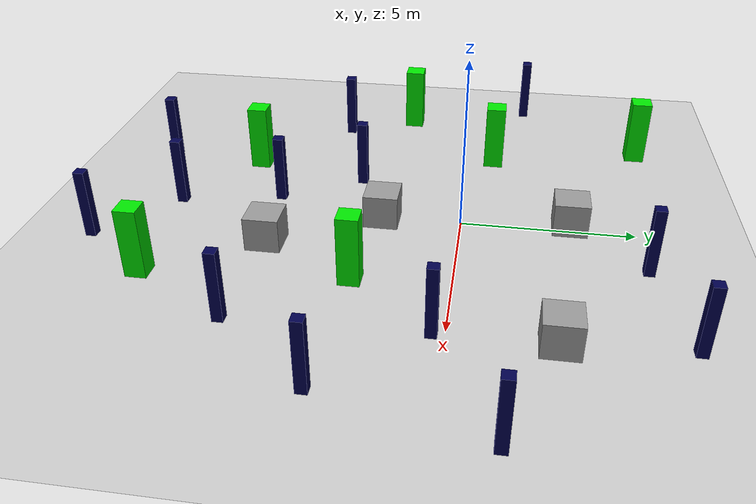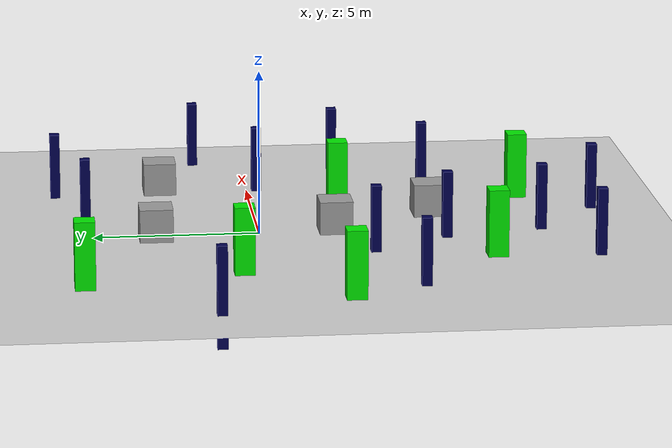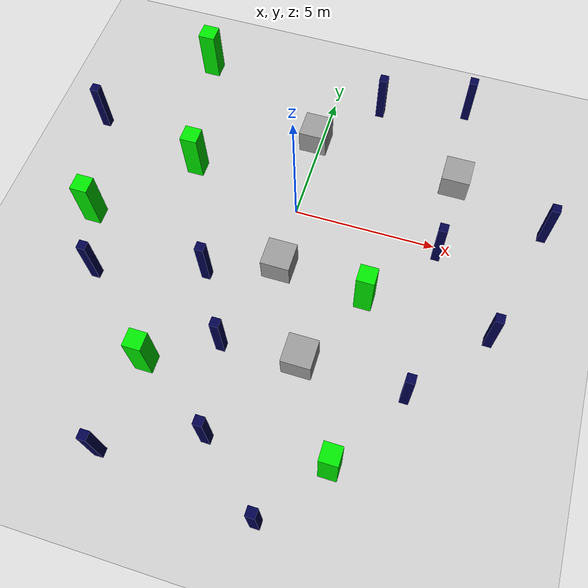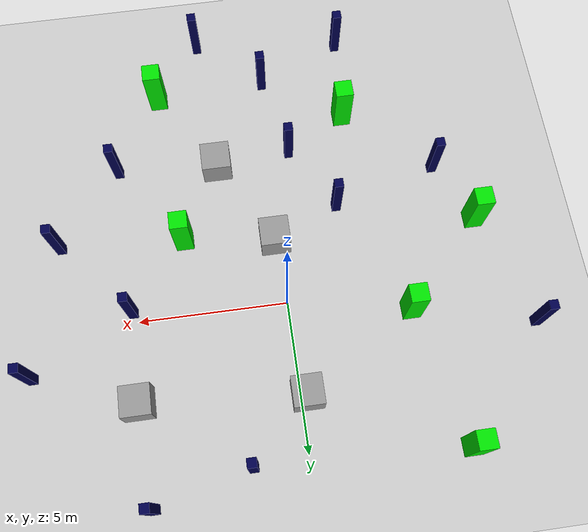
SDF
<sdf version="1.7">
 <world name="default">
  <light name="sun" type="directional">
   <pose>0 0 10 0 -0 0</pose>
   <diffuse>0.8 0.8 0.8 1</diffuse>
   <specular>0.2 0.2 0.2 1</specular>
   <attenuation>
    <range>1000</range>
    <constant>0.9</constant>
    <linear>0.01</linear>
    <quadratic>0.001</quadratic>
   </attenuation>
   <direction>-0.5 0.1 -0.9</direction>
   <spot><inner_angle>0</inner_angle><outer_angle>0</outer_angle><falloff>0</falloff></spot>
  </light>
  <model name="ground_plane">
   <static>1</static>
   <link name="link">
    <collision name="collision">
     <geometry><plane><normal>0 0 1</normal><size>100 100</size></plane></geometry>
     <surface>
      <contact><collide_bitmask>65535</collide_bitmask></contact>
      <friction><ode><mu>100</mu><mu2>50</mu2></ode></friction>
     </surface>
    </collision>
    <visual name="visual">
     <cast_shadows>0</cast_shadows>
     <geometry><plane><normal>0 0 1</normal><size>100 100</size></plane></geometry>
     <material>
      <script><uri>file://media/materials/scripts/gazebo.material</uri><name>Gazebo/Grey</name></script>
     </material>
    </visual>
   </link>
  </model>
  <gravity>0 0 -9.8</gravity>
  <magnetic_field>6e-06 2.3e-05 -4.2e-05</magnetic_field>
  <atmosphere type="adiabatic"/>
  <physics type="ode">
   <max_step_size>0.001</max_step_size>
   <real_time_factor>1</real_time_factor>
   <real_time_update_rate>1000</real_time_update_rate>
  </physics>
  <scene><ambient>0.4 0.4 0.4 1</ambient><background>0.7 0.7 0.7 1</background><shadows>1</shadows></scene>
  <spherical_coordinates>
   <surface_model>EARTH_WGS84</surface_model>
   <latitude_deg>0</latitude_deg>
   <longitude_deg>0</longitude_deg>
   <elevation>0</elevation>
   <heading_deg>0</heading_deg>
  </spherical_coordinates>
  <model name="unit_box_clone_0">
   <pose>-0.213673 3.13431 0.5 -0 -0 -0</pose>
   <link name="link">
    <inertial>
     <mass>1</mass>
     <inertia>
      <ixx>0.166667</ixx>
      <ixy>0</ixy>
      <ixz>0</ixz>
      <iyy>0.166667</iyy>
      <iyz>0</iyz>
      <izz>0.166667</izz>
     </inertia>
    </inertial>
    <collision name="collision"><geometry><box><size>1 1 1</size></box></geometry></collision>
    <visual name="visual">
     <geometry><box><size>1 1 1</size></box></geometry>
     <material>
      <script><name>Gazebo/Grey</name><uri>file://media/materials/scripts/gazebo.material</uri></script>
     </material>
    </visual>
   </link>
  </model>
  <model name="unit_box_clone_3">
   <pose>1.81219 -5.35346 0.5 0 -0 0</pose>
   <link name="link">
    <inertial>
     <mass>1</mass>
     <inertia>
      <ixx>0.166667</ixx>
      <ixy>0</ixy>
      <ixz>0</ixz>
      <iyy>0.166667</iyy>
      <iyz>0</iyz>
      <izz>0.166667</izz>
     </inertia>
    </inertial>
    <collision name="collision"><geometry><box><size>1 1 1</size></box></geometry></collision>
    <visual name="visual">
     <geometry><box><size>1 1 1</size></box></geometry>
     <material>
      <script><name>Gazebo/Grey</name><uri>file://media/materials/scripts/gazebo.material</uri></script>
     </material>
    </visual>
   </link>
  </model>
  <model name="unit_box_clone_5">
   <pose>5.1614 2.71929 0.499995 1e-05 -0 0</pose>
   <link name="link">
    <inertial>
     <mass>1</mass>
     <inertia>
      <ixx>0.166667</ixx>
      <ixy>0</ixy>
      <ixz>0</ixz>
      <iyy>0.166667</iyy>
      <iyz>0</iyz>
      <izz>0.166667</izz>
     </inertia>
    </inertial>
    <collision name="collision"><geometry><box><size>1 1 1</size></box></geometry></collision>
    <visual name="visual">
     <geometry><box><size>1 1 1</size></box></geometry>
     <material>
      <script><name>Gazebo/Grey</name><uri>file://media/materials/scripts/gazebo.material</uri></script>
     </material>
    </visual>
   </link>
  </model>
  <model name="unit_box_clone">
   <link name="link">
    <inertial>
     <mass>1</mass>
     <inertia>
      <ixx>0.166667</ixx>
      <ixy>0</ixy>
      <ixz>0</ixz>
      <iyy>0.166667</iyy>
      <iyz>0</iyz>
      <izz>0.166667</izz>
     </inertia>
    </inertial>
    <visual name="visual">
     <geometry><box><size>0.3 0.3 3</size></box></geometry>
     <material>
      <script><name>Gazebo/Grey</name><uri>file://media/materials/scripts/gazebo.material</uri></script>
      <shader type="pixel"><normal_map>__default__</normal_map></shader>
      <ambient>0 0 0.3 1</ambient>
      <diffuse>0.7 0.7 0.7 1</diffuse>
      <specular>0.01 0.01 0.01 1</specular>
      <emissive>0 0 0 1</emissive>
     </material>
    </visual>
    <collision name="collision">
     <geometry><box><size>0.3 0.3 2</size></box></geometry>
     <surface>
      <friction>
       <ode><mu>1</mu><mu2>1</mu2><fdir1>0 0 0</fdir1><slip1>0</slip1><slip2>0</slip2></ode>
       <torsional>
        <coefficient>1</coefficient>
        <patch_radius>0</patch_radius>
        <surface_radius>0</surface_radius>
        <use_patch_radius>1</use_patch_radius>
        <ode><slip>0</slip></ode>
       </torsional>
      </friction>
      <bounce><restitution_coefficient>0</restitution_coefficient><threshold>1e+06</threshold></bounce>
      <contact>
       <collide_without_contact>0</collide_without_contact>
       <collide_without_contact_bitmask>1</collide_without_contact_bitmask>
       <collide_bitmask>1</collide_bitmask>
       <ode>
        <soft_cfm>0</soft_cfm>
        <soft_erp>0.2</soft_erp>
        <kp>1e+13</kp>
        <kd>1</kd>
        <max_vel>0.01</max_vel>
        <min_depth>0</min_depth>
       </ode>
       <bullet>
        <split_impulse>1</split_impulse>
        <split_impulse_penetration_threshold>-0.01</split_impulse_penetration_threshold>
        <soft_cfm>0</soft_cfm>
        <soft_erp>0.2</soft_erp>
        <kp>1e+13</kp>
        <kd>1</kd>
       </bullet>
      </contact>
     </surface>
    </collision>
   </link>
   <static>0</static>
   <pose>-2.15953 -3.27044 0.499995 0 1e-05 0</pose>
  </model>
  <model name="unit_box_clone_2">
   <link name="link">
    <inertial>
     <mass>1</mass>
     <inertia>
      <ixx>0.166667</ixx>
      <ixy>0</ixy>
      <ixz>0</ixz>
      <iyy>0.166667</iyy>
      <iyz>0</iyz>
      <izz>0.166667</izz>
     </inertia>
    </inertial>
    <visual name="visual">
     <geometry><box><size>0.6 0.6 3</size></box></geometry>
     <material>
      <script><name>Gazebo/Grey</name><uri>file://media/materials/scripts/gazebo.material</uri></script>
      <shader type="pixel"><normal_map>__default__</normal_map></shader>
      <ambient>0 0.9 0 1</ambient>
      <diffuse>0.7 0.7 0.7 1</diffuse>
      <specular>0.01 0.01 0.01 1</specular>
      <emissive>0 0 0 1</emissive>
     </material>
    </visual>
    <collision name="collision">
     <geometry><box><size>0.6 0.6 2</size></box></geometry>
     <surface>
      <friction>
       <ode><mu>1</mu><mu2>1</mu2><fdir1>0 0 0</fdir1><slip1>0</slip1><slip2>0</slip2></ode>
       <torsional>
        <coefficient>1</coefficient>
        <patch_radius>0</patch_radius>
        <surface_radius>0</surface_radius>
        <use_patch_radius>1</use_patch_radius>
        <ode><slip>0</slip></ode>
       </torsional>
      </friction>
      <bounce><restitution_coefficient>0</restitution_coefficient><threshold>1e+06</threshold></bounce>
      <contact>
       <collide_without_contact>0</collide_without_contact>
       <collide_without_contact_bitmask>1</collide_without_contact_bitmask>
       <collide_bitmask>1</collide_bitmask>
       <ode>
        <soft_cfm>0</soft_cfm>
        <soft_erp>0.2</soft_erp>
        <kp>1e+13</kp>
        <kd>1</kd>
        <max_vel>0.01</max_vel>
        <min_depth>0</min_depth>
       </ode>
       <bullet>
        <split_impulse>1</split_impulse>
        <split_impulse_penetration_threshold>-0.01</split_impulse_penetration_threshold>
        <soft_cfm>0</soft_cfm>
        <soft_erp>0.2</soft_erp>
        <kp>1e+13</kp>
        <kd>1</kd>
       </bullet>
      </contact>
     </surface>
    </collision>
   </link>
   <static>0</static>
   <pose>-2.89993 -6.78958 0.499995 -1e-05 0 0</pose>
  </model>
  <model name="unit_box_clone_2_clone">
   <link name="link">
    <inertial>
     <mass>1</mass>
     <inertia>
      <ixx>0.166667</ixx>
      <ixy>0</ixy>
      <ixz>0</ixz>
      <iyy>0.166667</iyy>
      <iyz>0</iyz>
      <izz>0.166667</izz>
     </inertia>
    </inertial>
    <visual name="visual">
     <geometry><box><size>0.6 0.6 3</size></box></geometry>
     <material>
      <script><name>Gazebo/Grey</name><uri>file://media/materials/scripts/gazebo.material</uri></script>
      <shader type="pixel"><normal_map>__default__</normal_map></shader>
      <ambient>0 0.9 0 1</ambient>
      <diffuse>0.7 0.7 0.7 1</diffuse>
      <specular>0.01 0.01 0.01 1</specular>
      <emissive>0 0 0 1</emissive>
     </material>
    </visual>
    <collision name="collision">
     <geometry><box><size>0.6 0.6 2</size></box></geometry>
     <surface>
      <friction>
       <ode><mu>1</mu><mu2>1</mu2><fdir1>0 0 0</fdir1><slip1>0</slip1><slip2>0</slip2></ode>
       <torsional>
        <coefficient>1</coefficient>
        <patch_radius>0</patch_radius>
        <surface_radius>0</surface_radius>
        <use_patch_radius>1</use_patch_radius>
        <ode><slip>0</slip></ode>
       </torsional>
      </friction>
      <bounce><restitution_coefficient>0</restitution_coefficient><threshold>1e+06</threshold></bounce>
      <contact>
       <collide_without_contact>0</collide_without_contact>
       <collide_without_contact_bitmask>1</collide_without_contact_bitmask>
       <collide_bitmask>1</collide_bitmask>
       <ode>
        <soft_cfm>0</soft_cfm>
        <soft_erp>0.2</soft_erp>
        <kp>1e+13</kp>
        <kd>1</kd>
        <max_vel>0.01</max_vel>
        <min_depth>0</min_depth>
       </ode>
       <bullet>
        <split_impulse>1</split_impulse>
        <split_impulse_penetration_threshold>-0.01</split_impulse_penetration_threshold>
        <soft_cfm>0</soft_cfm>
        <soft_erp>0.2</soft_erp>
        <kp>1e+13</kp>
        <kd>1</kd>
       </bullet>
      </contact>
     </surface>
    </collision>
   </link>
   <static>0</static>
   <pose>-6.81169 -2.16483 0.499995 -1e-05 0 0</pose>
  </model>
  <model name="unit_box_clone_2_clone_0">
   <link name="link">
    <inertial>
     <mass>1</mass>
     <inertia>
      <ixx>0.166667</ixx>
      <ixy>0</ixy>
      <ixz>0</ixz>
      <iyy>0.166667</iyy>
      <iyz>0</iyz>
      <izz>0.166667</izz>
     </inertia>
    </inertial>
    <visual name="visual">
     <geometry><box><size>0.6 0.6 3</size></box></geometry>
     <material>
      <script><name>Gazebo/Grey</name><uri>file://media/materials/scripts/gazebo.material</uri></script>
      <shader type="pixel"><normal_map>__default__</normal_map></shader>
      <ambient>0 0.9 0 1</ambient>
      <diffuse>0.7 0.7 0.7 1</diffuse>
      <specular>0.01 0.01 0.01 1</specular>
      <emissive>0 0 0 1</emissive>
     </material>
    </visual>
    <collision name="collision">
     <geometry><box><size>0.6 0.6 2</size></box></geometry>
     <surface>
      <friction>
       <ode><mu>1</mu><mu2>1</mu2><fdir1>0 0 0</fdir1><slip1>0</slip1><slip2>0</slip2></ode>
       <torsional>
        <coefficient>1</coefficient>
        <patch_radius>0</patch_radius>
        <surface_radius>0</surface_radius>
        <use_patch_radius>1</use_patch_radius>
        <ode><slip>0</slip></ode>
       </torsional>
      </friction>
      <bounce><restitution_coefficient>0</restitution_coefficient><threshold>1e+06</threshold></bounce>
      <contact>
       <collide_without_contact>0</collide_without_contact>
       <collide_without_contact_bitmask>1</collide_without_contact_bitmask>
       <collide_bitmask>1</collide_bitmask>
       <ode>
        <soft_cfm>0</soft_cfm>
        <soft_erp>0.2</soft_erp>
        <kp>1e+13</kp>
        <kd>1</kd>
        <max_vel>0.01</max_vel>
        <min_depth>0</min_depth>
       </ode>
       <bullet>
        <split_impulse>1</split_impulse>
        <split_impulse_penetration_threshold>-0.01</split_impulse_penetration_threshold>
        <soft_cfm>0</soft_cfm>
        <soft_erp>0.2</soft_erp>
        <kp>1e+13</kp>
        <kd>1</kd>
       </bullet>
      </contact>
     </surface>
    </collision>
   </link>
   <static>0</static>
   <pose>3.67553 -8.34324 0.499995 -1e-05 0 0</pose>
  </model>
  <model name="unit_box_clone_2_clone_1">
   <link name="link">
    <inertial>
     <mass>1</mass>
     <inertia>
      <ixx>0.166667</ixx>
      <ixy>0</ixy>
      <ixz>0</ixz>
      <iyy>0.166667</iyy>
      <iyz>0</iyz>
      <izz>0.166667</izz>
     </inertia>
    </inertial>
    <visual name="visual">
     <geometry><box><size>0.6 0.6 3</size></box></geometry>
     <material>
      <script><name>Gazebo/Grey</name><uri>file://media/materials/scripts/gazebo.material</uri></script>
      <shader type="pixel"><normal_map>__default__</normal_map></shader>
      <ambient>0 0.9 0 1</ambient>
      <diffuse>0.7 0.7 0.7 1</diffuse>
      <specular>0.01 0.01 0.01 1</specular>
      <emissive>0 0 0 1</emissive>
     </material>
    </visual>
    <collision name="collision">
     <geometry><box><size>0.6 0.6 2</size></box></geometry>
     <surface>
      <friction>
       <ode><mu>1</mu><mu2>1</mu2><fdir1>0 0 0</fdir1><slip1>0</slip1><slip2>0</slip2></ode>
       <torsional>
        <coefficient>1</coefficient>
        <patch_radius>0</patch_radius>
        <surface_radius>0</surface_radius>
        <use_patch_radius>1</use_patch_radius>
        <ode><slip>0</slip></ode>
       </torsional>
      </friction>
      <bounce><restitution_coefficient>0</restitution_coefficient><threshold>1e+06</threshold></bounce>
      <contact>
       <collide_without_contact>0</collide_without_contact>
       <collide_without_contact_bitmask>1</collide_without_contact_bitmask>
       <collide_bitmask>1</collide_bitmask>
       <ode>
        <soft_cfm>0</soft_cfm>
        <soft_erp>0.2</soft_erp>
        <kp>1e+13</kp>
        <kd>1</kd>
        <max_vel>0.01</max_vel>
        <min_depth>0</min_depth>
       </ode>
       <bullet>
        <split_impulse>1</split_impulse>
        <split_impulse_penetration_threshold>-0.01</split_impulse_penetration_threshold>
        <soft_cfm>0</soft_cfm>
        <soft_erp>0.2</soft_erp>
        <kp>1e+13</kp>
        <kd>1</kd>
       </bullet>
      </contact>
     </surface>
    </collision>
   </link>
   <static>0</static>
   <pose>3.21699 -2.68293 0.499995 -1e-05 0 0</pose>
  </model>
  <model name="unit_box_clone_2_clone_2">
   <link name="link">
    <inertial>
     <mass>1</mass>
     <inertia>
      <ixx>0.166667</ixx>
      <ixy>0</ixy>
      <ixz>0</ixz>
      <iyy>0.166667</iyy>
      <iyz>0</iyz>
      <izz>0.166667</izz>
     </inertia>
    </inertial>
    <visual name="visual">
     <geometry><box><size>0.6 0.6 3</size></box></geometry>
     <material>
      <script><name>Gazebo/Grey</name><uri>file://media/materials/scripts/gazebo.material</uri></script>
      <shader type="pixel"><normal_map>__default__</normal_map></shader>
      <ambient>0 0.9 0 1</ambient>
      <diffuse>0.7 0.7 0.7 1</diffuse>
      <specular>0.01 0.01 0.01 1</specular>
      <emissive>0 0 0 1</emissive>
     </material>
    </visual>
    <collision name="collision">
     <geometry><box><size>0.6 0.6 2</size></box></geometry>
     <surface>
      <friction>
       <ode><mu>1</mu><mu2>1</mu2><fdir1>0 0 0</fdir1><slip1>0</slip1><slip2>0</slip2></ode>
       <torsional>
        <coefficient>1</coefficient>
        <patch_radius>0</patch_radius>
        <surface_radius>0</surface_radius>
        <use_patch_radius>1</use_patch_radius>
        <ode><slip>0</slip></ode>
       </torsional>
      </friction>
      <bounce><restitution_coefficient>0</restitution_coefficient><threshold>1e+06</threshold></bounce>
      <contact>
       <collide_without_contact>0</collide_without_contact>
       <collide_without_contact_bitmask>1</collide_without_contact_bitmask>
       <collide_bitmask>1</collide_bitmask>
       <ode>
        <soft_cfm>0</soft_cfm>
        <soft_erp>0.2</soft_erp>
        <kp>1e+13</kp>
        <kd>1</kd>
        <max_vel>0.01</max_vel>
        <min_depth>0</min_depth>
       </ode>
       <bullet>
        <split_impulse>1</split_impulse>
        <split_impulse_penetration_threshold>-0.01</split_impulse_penetration_threshold>
        <soft_cfm>0</soft_cfm>
        <soft_erp>0.2</soft_erp>
        <kp>1e+13</kp>
        <kd>1</kd>
       </bullet>
      </contact>
     </surface>
    </collision>
   </link>
   <static>0</static>
   <pose>-4.05212 0.785587 0.499995 -1e-05 0 0</pose>
  </model>
  <model name="unit_box_clone_2_clone_3">
   <link name="link">
    <inertial>
     <mass>1</mass>
     <inertia>
      <ixx>0.166667</ixx>
      <ixy>0</ixy>
      <ixz>0</ixz>
      <iyy>0.166667</iyy>
      <iyz>0</iyz>
      <izz>0.166667</izz>
     </inertia>
    </inertial>
    <visual name="visual">
     <geometry><box><size>0.6 0.6 3</size></box></geometry>
     <material>
      <script><name>Gazebo/Grey</name><uri>file://media/materials/scripts/gazebo.material</uri></script>
      <shader type="pixel"><normal_map>__default__</normal_map></shader>
      <ambient>0 0.9 0 1</ambient>
      <diffuse>0.7 0.7 0.7 1</diffuse>
      <specular>0.01 0.01 0.01 1</specular>
      <emissive>0 0 0 1</emissive>
     </material>
    </visual>
    <collision name="collision">
     <geometry><box><size>0.6 0.6 2</size></box></geometry>
     <surface>
      <friction>
       <ode><mu>1</mu><mu2>1</mu2><fdir1>0 0 0</fdir1><slip1>0</slip1><slip2>0</slip2></ode>
       <torsional>
        <coefficient>1</coefficient>
        <patch_radius>0</patch_radius>
        <surface_radius>0</surface_radius>
        <use_patch_radius>1</use_patch_radius>
        <ode><slip>0</slip></ode>
       </torsional>
      </friction>
      <bounce><restitution_coefficient>0</restitution_coefficient><threshold>1e+06</threshold></bounce>
      <contact>
       <collide_without_contact>0</collide_without_contact>
       <collide_without_contact_bitmask>1</collide_without_contact_bitmask>
       <collide_bitmask>1</collide_bitmask>
       <ode>
        <soft_cfm>0</soft_cfm>
        <soft_erp>0.2</soft_erp>
        <kp>1e+13</kp>
        <kd>1</kd>
        <max_vel>0.01</max_vel>
        <min_depth>0</min_depth>
       </ode>
       <bullet>
        <split_impulse>1</split_impulse>
        <split_impulse_penetration_threshold>-0.01</split_impulse_penetration_threshold>
        <soft_cfm>0</soft_cfm>
        <soft_erp>0.2</soft_erp>
        <kp>1e+13</kp>
        <kd>1</kd>
       </bullet>
      </contact>
     </surface>
    </collision>
   </link>
   <static>0</static>
   <pose>-5.13639 5.43813 0.499995 -1e-05 0 0</pose>
  </model>
  <model name="unit_box_clone_clone">
   <link name="link">
    <inertial>
     <mass>1</mass>
     <inertia>
      <ixx>0.166667</ixx>
      <ixy>0</ixy>
      <ixz>0</ixz>
      <iyy>0.166667</iyy>
      <iyz>0</iyz>
      <izz>0.166667</izz>
     </inertia>
    </inertial>
    <visual name="visual">
     <geometry><box><size>0.3 0.3 3</size></box></geometry>
     <material>
      <script><name>Gazebo/Grey</name><uri>file://media/materials/scripts/gazebo.material</uri></script>
      <shader type="pixel"><normal_map>__default__</normal_map></shader>
      <ambient>0 0 0.3 1</ambient>
      <diffuse>0.7 0.7 0.7 1</diffuse>
      <specular>0.01 0.01 0.01 1</specular>
      <emissive>0 0 0 1</emissive>
     </material>
    </visual>
    <collision name="collision">
     <geometry><box><size>0.3 0.3 2</size></box></geometry>
     <surface>
      <friction>
       <ode><mu>1</mu><mu2>1</mu2><fdir1>0 0 0</fdir1><slip1>0</slip1><slip2>0</slip2></ode>
       <torsional>
        <coefficient>1</coefficient>
        <patch_radius>0</patch_radius>
        <surface_radius>0</surface_radius>
        <use_patch_radius>1</use_patch_radius>
        <ode><slip>0</slip></ode>
       </torsional>
      </friction>
      <bounce><restitution_coefficient>0</restitution_coefficient><threshold>1e+06</threshold></bounce>
      <contact>
       <collide_without_contact>0</collide_without_contact>
       <collide_without_contact_bitmask>1</collide_without_contact_bitmask>
       <collide_bitmask>1</collide_bitmask>
       <ode>
        <soft_cfm>0</soft_cfm>
        <soft_erp>0.2</soft_erp>
        <kp>1e+13</kp>
        <kd>1</kd>
        <max_vel>0.01</max_vel>
        <min_depth>0</min_depth>
       </ode>
       <bullet>
        <split_impulse>1</split_impulse>
        <split_impulse_penetration_threshold>-0.01</split_impulse_penetration_threshold>
        <soft_cfm>0</soft_cfm>
        <soft_erp>0.2</soft_erp>
        <kp>1e+13</kp>
        <kd>1</kd>
       </bullet>
      </contact>
     </surface>
    </collision>
   </link>
   <static>0</static>
   <pose>5.31072 -5.58064 0.499995 0 1e-05 0</pose>
  </model>
  <model name="unit_box_clone_clone_0">
   <link name="link">
    <inertial>
     <mass>1</mass>
     <inertia>
      <ixx>0.166667</ixx>
      <ixy>0</ixy>
      <ixz>0</ixz>
      <iyy>0.166667</iyy>
      <iyz>0</iyz>
      <izz>0.166667</izz>
     </inertia>
    </inertial>
    <visual name="visual">
     <geometry><box><size>0.3 0.3 3</size></box></geometry>
     <material>
      <script><name>Gazebo/Grey</name><uri>file://media/materials/scripts/gazebo.material</uri></script>
      <shader type="pixel"><normal_map>__default__</normal_map></shader>
      <ambient>0 0 0.3 1</ambient>
      <diffuse>0.7 0.7 0.7 1</diffuse>
      <specular>0.01 0.01 0.01 1</specular>
      <emissive>0 0 0 1</emissive>
     </material>
    </visual>
    <collision name="collision">
     <geometry><box><size>0.3 0.3 2</size></box></geometry>
     <surface>
      <friction>
       <ode><mu>1</mu><mu2>1</mu2><fdir1>0 0 0</fdir1><slip1>0</slip1><slip2>0</slip2></ode>
       <torsional>
        <coefficient>1</coefficient>
        <patch_radius>0</patch_radius>
        <surface_radius>0</surface_radius>
        <use_patch_radius>1</use_patch_radius>
        <ode><slip>0</slip></ode>
       </torsional>
      </friction>
      <bounce><restitution_coefficient>0</restitution_coefficient><threshold>1e+06</threshold></bounce>
      <contact>
       <collide_without_contact>0</collide_without_contact>
       <collide_without_contact_bitmask>1</collide_without_contact_bitmask>
       <collide_bitmask>1</collide_bitmask>
       <ode>
        <soft_cfm>0</soft_cfm>
        <soft_erp>0.2</soft_erp>
        <kp>1e+13</kp>
        <kd>1</kd>
        <max_vel>0.01</max_vel>
        <min_depth>0</min_depth>
       </ode>
       <bullet>
        <split_impulse>1</split_impulse>
        <split_impulse_penetration_threshold>-0.01</split_impulse_penetration_threshold>
        <soft_cfm>0</soft_cfm>
        <soft_erp>0.2</soft_erp>
        <kp>1e+13</kp>
        <kd>1</kd>
       </bullet>
      </contact>
     </surface>
    </collision>
   </link>
   <static>0</static>
   <pose>5.15085 -0.330048 0.499995 0 1e-05 0</pose>
  </model>
  <model name="unit_box_clone_clone_1">
   <link name="link">
    <inertial>
     <mass>1</mass>
     <inertia>
      <ixx>0.166667</ixx>
      <ixy>0</ixy>
      <ixz>0</ixz>
      <iyy>0.166667</iyy>
      <iyz>0</iyz>
      <izz>0.166667</izz>
     </inertia>
    </inertial>
    <visual name="visual">
     <geometry><box><size>0.3 0.3 3</size></box></geometry>
     <material>
      <script><name>Gazebo/Grey</name><uri>file://media/materials/scripts/gazebo.material</uri></script>
      <shader type="pixel"><normal_map>__default__</normal_map></shader>
      <ambient>0 0 0.3 1</ambient>
      <diffuse>0.7 0.7 0.7 1</diffuse>
      <specular>0.01 0.01 0.01 1</specular>
      <emissive>0 0 0 1</emissive>
     </material>
    </visual>
    <collision name="collision">
     <geometry><box><size>0.3 0.3 2</size></box></geometry>
     <surface>
      <friction>
       <ode><mu>1</mu><mu2>1</mu2><fdir1>0 0 0</fdir1><slip1>0</slip1><slip2>0</slip2></ode>
       <torsional>
        <coefficient>1</coefficient>
        <patch_radius>0</patch_radius>
        <surface_radius>0</surface_radius>
        <use_patch_radius>1</use_patch_radius>
        <ode><slip>0</slip></ode>
       </torsional>
      </friction>
      <bounce><restitution_coefficient>0</restitution_coefficient><threshold>1e+06</threshold></bounce>
      <contact>
       <collide_without_contact>0</collide_without_contact>
       <collide_without_contact_bitmask>1</collide_without_contact_bitmask>
       <collide_bitmask>1</collide_bitmask>
       <ode>
        <soft_cfm>0</soft_cfm>
        <soft_erp>0.2</soft_erp>
        <kp>1e+13</kp>
        <kd>1</kd>
        <max_vel>0.01</max_vel>
        <min_depth>0</min_depth>
       </ode>
       <bullet>
        <split_impulse>1</split_impulse>
        <split_impulse_penetration_threshold>-0.01</split_impulse_penetration_threshold>
        <soft_cfm>0</soft_cfm>
        <soft_erp>0.2</soft_erp>
        <kp>1e+13</kp>
        <kd>1</kd>
       </bullet>
      </contact>
     </surface>
    </collision>
   </link>
   <static>0</static>
   <pose>-8.10546 1.73846 0.499995 0 1e-05 0</pose>
  </model>
  <model name="unit_box_clone_clone_2">
   <link name="link">
    <inertial>
     <mass>1</mass>
     <inertia>
      <ixx>0.166667</ixx>
      <ixy>0</ixy>
      <ixz>0</ixz>
      <iyy>0.166667</iyy>
      <iyz>0</iyz>
      <izz>0.166667</izz>
     </inertia>
    </inertial>
    <visual name="visual">
     <geometry><box><size>0.3 0.3 3</size></box></geometry>
     <material>
      <script><name>Gazebo/Grey</name><uri>file://media/materials/scripts/gazebo.material</uri></script>
      <shader type="pixel"><normal_map>__default__</normal_map></shader>
      <ambient>0 0 0.3 1</ambient>
      <diffuse>0.7 0.7 0.7 1</diffuse>
      <specular>0.01 0.01 0.01 1</specular>
      <emissive>0 0 0 1</emissive>
     </material>
    </visual>
    <collision name="collision">
     <geometry><box><size>0.3 0.3 2</size></box></geometry>
     <surface>
      <friction>
       <ode><mu>1</mu><mu2>1</mu2><fdir1>0 0 0</fdir1><slip1>0</slip1><slip2>0</slip2></ode>
       <torsional>
        <coefficient>1</coefficient>
        <patch_radius>0</patch_radius>
        <surface_radius>0</surface_radius>
        <use_patch_radius>1</use_patch_radius>
        <ode><slip>0</slip></ode>
       </torsional>
      </friction>
      <bounce><restitution_coefficient>0</restitution_coefficient><threshold>1e+06</threshold></bounce>
      <contact>
       <collide_without_contact>0</collide_without_contact>
       <collide_without_contact_bitmask>1</collide_without_contact_bitmask>
       <collide_bitmask>1</collide_bitmask>
       <ode>
        <soft_cfm>0</soft_cfm>
        <soft_erp>0.2</soft_erp>
        <kp>1e+13</kp>
        <kd>1</kd>
        <max_vel>0.01</max_vel>
        <min_depth>0</min_depth>
       </ode>
       <bullet>
        <split_impulse>1</split_impulse>
        <split_impulse_penetration_threshold>-0.01</split_impulse_penetration_threshold>
        <soft_cfm>0</soft_cfm>
        <soft_erp>0.2</soft_erp>
        <kp>1e+13</kp>
        <kd>1</kd>
       </bullet>
      </contact>
     </surface>
    </collision>
   </link>
   <static>0</static>
   <pose>1.75214 5.15902 0.499995 0 1e-05 0</pose>
  </model>
  <model name="unit_box_clone_clone_3">
   <link name="link">
    <inertial>
     <mass>1</mass>
     <inertia>
      <ixx>0.166667</ixx>
      <ixy>0</ixy>
      <ixz>0</ixz>
      <iyy>0.166667</iyy>
      <iyz>0</iyz>
      <izz>0.166667</izz>
     </inertia>
    </inertial>
    <visual name="visual">
     <geometry><box><size>0.3 0.3 3</size></box></geometry>
     <material>
      <script><name>Gazebo/Grey</name><uri>file://media/materials/scripts/gazebo.material</uri></script>
      <shader type="pixel"><normal_map>__default__</normal_map></shader>
      <ambient>0 0 0.3 1</ambient>
      <diffuse>0.7 0.7 0.7 1</diffuse>
      <specular>0.01 0.01 0.01 1</specular>
      <emissive>0 0 0 1</emissive>
     </material>
    </visual>
    <collision name="collision">
     <geometry><box><size>0.3 0.3 2</size></box></geometry>
     <surface>
      <friction>
       <ode><mu>1</mu><mu2>1</mu2><fdir1>0 0 0</fdir1><slip1>0</slip1><slip2>0</slip2></ode>
       <torsional>
        <coefficient>1</coefficient>
        <patch_radius>0</patch_radius>
        <surface_radius>0</surface_radius>
        <use_patch_radius>1</use_patch_radius>
        <ode><slip>0</slip></ode>
       </torsional>
      </friction>
      <bounce><restitution_coefficient>0</restitution_coefficient><threshold>1e+06</threshold></bounce>
      <contact>
       <collide_without_contact>0</collide_without_contact>
       <collide_without_contact_bitmask>1</collide_without_contact_bitmask>
       <collide_bitmask>1</collide_bitmask>
       <ode>
        <soft_cfm>0</soft_cfm>
        <soft_erp>0.2</soft_erp>
        <kp>1e+13</kp>
        <kd>1</kd>
        <max_vel>0.01</max_vel>
        <min_depth>0</min_depth>
       </ode>
       <bullet>
        <split_impulse>1</split_impulse>
        <split_impulse_penetration_threshold>-0.01</split_impulse_penetration_threshold>
        <soft_cfm>0</soft_cfm>
        <soft_erp>0.2</soft_erp>
        <kp>1e+13</kp>
        <kd>1</kd>
       </bullet>
      </contact>
     </surface>
    </collision>
   </link>
   <static>0</static>
   <pose>7.45721 -2.9459 0.499995 0 1e-05 0</pose>
  </model>
  <model name="unit_box_clone_clone_4">
   <link name="link">
    <inertial>
     <mass>1</mass>
     <inertia>
      <ixx>0.166667</ixx>
      <ixy>0</ixy>
      <ixz>0</ixz>
      <iyy>0.166667</iyy>
      <iyz>0</iyz>
      <izz>0.166667</izz>
     </inertia>
    </inertial>
    <visual name="visual">
     <geometry><box><size>0.3 0.3 3</size></box></geometry>
     <material>
      <script><name>Gazebo/Grey</name><uri>file://media/materials/scripts/gazebo.material</uri></script>
      <shader type="pixel"><normal_map>__default__</normal_map></shader>
      <ambient>0 0 0.3 1</ambient>
      <diffuse>0.7 0.7 0.7 1</diffuse>
      <specular>0.01 0.01 0.01 1</specular>
      <emissive>0 0 0 1</emissive>
     </material>
    </visual>
    <collision name="collision">
     <geometry><box><size>0.3 0.3 2</size></box></geometry>
     <surface>
      <friction>
       <ode><mu>1</mu><mu2>1</mu2><fdir1>0 0 0</fdir1><slip1>0</slip1><slip2>0</slip2></ode>
       <torsional>
        <coefficient>1</coefficient>
        <patch_radius>0</patch_radius>
        <surface_radius>0</surface_radius>
        <use_patch_radius>1</use_patch_radius>
        <ode><slip>0</slip></ode>
       </torsional>
      </friction>
      <bounce><restitution_coefficient>0</restitution_coefficient><threshold>1e+06</threshold></bounce>
      <contact>
       <collide_without_contact>0</collide_without_contact>
       <collide_without_contact_bitmask>1</collide_without_contact_bitmask>
       <collide_bitmask>1</collide_bitmask>
       <ode>
        <soft_cfm>0</soft_cfm>
        <soft_erp>0.2</soft_erp>
        <kp>1e+13</kp>
        <kd>1</kd>
        <max_vel>0.01</max_vel>
        <min_depth>0</min_depth>
       </ode>
       <bullet>
        <split_impulse>1</split_impulse>
        <split_impulse_penetration_threshold>-0.01</split_impulse_penetration_threshold>
        <soft_cfm>0</soft_cfm>
        <soft_erp>0.2</soft_erp>
        <kp>1e+13</kp>
        <kd>1</kd>
       </bullet>
      </contact>
     </surface>
    </collision>
   </link>
   <static>0</static>
   <pose>-0.178188 -8.53709 0.499995 0 1e-05 0</pose>
  </model>
  <model name="unit_box_clone_clone_5">
   <link name="link">
    <inertial>
     <mass>1</mass>
     <inertia>
      <ixx>0.166667</ixx>
      <ixy>0</ixy>
      <ixz>0</ixz>
      <iyy>0.166667</iyy>
      <iyz>0</iyz>
      <izz>0.166667</izz>
     </inertia>
    </inertial>
    <visual name="visual">
     <geometry><box><size>0.3 0.3 3</size></box></geometry>
     <material>
      <script><name>Gazebo/Grey</name><uri>file://media/materials/scripts/gazebo.material</uri></script>
      <shader type="pixel"><normal_map>__default__</normal_map></shader>
      <ambient>0 0 0.3 1</ambient>
      <diffuse>0.7 0.7 0.7 1</diffuse>
      <specular>0.01 0.01 0.01 1</specular>
      <emissive>0 0 0 1</emissive>
     </material>
    </visual>
    <collision name="collision">
     <geometry><box><size>0.3 0.3 2</size></box></geometry>
     <surface>
      <friction>
       <ode><mu>1</mu><mu2>1</mu2><fdir1>0 0 0</fdir1><slip1>0</slip1><slip2>0</slip2></ode>
       <torsional>
        <coefficient>1</coefficient>
        <patch_radius>0</patch_radius>
        <surface_radius>0</surface_radius>
        <use_patch_radius>1</use_patch_radius>
        <ode><slip>0</slip></ode>
       </torsional>
      </friction>
      <bounce><restitution_coefficient>0</restitution_coefficient><threshold>1e+06</threshold></bounce>
      <contact>
       <collide_without_contact>0</collide_without_contact>
       <collide_without_contact_bitmask>1</collide_without_contact_bitmask>
       <collide_bitmask>1</collide_bitmask>
       <ode>
        <soft_cfm>0</soft_cfm>
        <soft_erp>0.2</soft_erp>
        <kp>1e+13</kp>
        <kd>1</kd>
        <max_vel>0.01</max_vel>
        <min_depth>0</min_depth>
       </ode>
       <bullet>
        <split_impulse>1</split_impulse>
        <split_impulse_penetration_threshold>-0.01</split_impulse_penetration_threshold>
        <soft_cfm>0</soft_cfm>
        <soft_erp>0.2</soft_erp>
        <kp>1e+13</kp>
        <kd>1</kd>
       </bullet>
      </contact>
     </surface>
    </collision>
   </link>
   <static>0</static>
   <pose>-5.78658 -4.30625 0.499995 0 1e-05 0</pose>
  </model>
  <model name="unit_box_clone_clone_6">
   <link name="link">
    <inertial>
     <mass>1</mass>
     <inertia>
      <ixx>0.166667</ixx>
      <ixy>0</ixy>
      <ixz>0</ixz>
      <iyy>0.166667</iyy>
      <iyz>0</iyz>
      <izz>0.166667</izz>
     </inertia>
    </inertial>
    <visual name="visual">
     <geometry><box><size>0.3 0.3 3</size></box></geometry>
     <material>
      <script><name>Gazebo/Grey</name><uri>file://media/materials/scripts/gazebo.material</uri></script>
      <shader type="pixel"><normal_map>__default__</normal_map></shader>
      <ambient>0 0 0.3 1</ambient>
      <diffuse>0.7 0.7 0.7 1</diffuse>
      <specular>0.01 0.01 0.01 1</specular>
      <emissive>0 0 0 1</emissive>
     </material>
    </visual>
    <collision name="collision">
     <geometry><box><size>0.3 0.3 2</size></box></geometry>
     <surface>
      <friction>
       <ode><mu>1</mu><mu2>1</mu2><fdir1>0 0 0</fdir1><slip1>0</slip1><slip2>0</slip2></ode>
       <torsional>
        <coefficient>1</coefficient>
        <patch_radius>0</patch_radius>
        <surface_radius>0</surface_radius>
        <use_patch_radius>1</use_patch_radius>
        <ode><slip>0</slip></ode>
       </torsional>
      </friction>
      <bounce><restitution_coefficient>0</restitution_coefficient><threshold>1e+06</threshold></bounce>
      <contact>
       <collide_without_contact>0</collide_without_contact>
       <collide_without_contact_bitmask>1</collide_without_contact_bitmask>
       <collide_bitmask>1</collide_bitmask>
       <ode>
        <soft_cfm>0</soft_cfm>
        <soft_erp>0.2</soft_erp>
        <kp>1e+13</kp>
        <kd>1</kd>
        <max_vel>0.01</max_vel>
        <min_depth>0</min_depth>
       </ode>
       <bullet>
        <split_impulse>1</split_impulse>
        <split_impulse_penetration_threshold>-0.01</split_impulse_penetration_threshold>
        <soft_cfm>0</soft_cfm>
        <soft_erp>0.2</soft_erp>
        <kp>1e+13</kp>
        <kd>1</kd>
       </bullet>
      </contact>
     </surface>
    </collision>
   </link>
   <static>0</static>
   <pose>-0.789586 -5.5769 0.499995 0 1e-05 0</pose>
  </model>
  <model name="unit_box_clone_clone_7">
   <link name="link">
    <inertial>
     <mass>1</mass>
     <inertia>
      <ixx>0.166667</ixx>
      <ixy>0</ixy>
      <ixz>0</ixz>
      <iyy>0.166667</iyy>
      <iyz>0</iyz>
      <izz>0.166667</izz>
     </inertia>
    </inertial>
    <visual name="visual">
     <geometry><box><size>0.3 0.3 3</size></box></geometry>
     <material>
      <script><name>Gazebo/Grey</name><uri>file://media/materials/scripts/gazebo.material</uri></script>
      <shader type="pixel"><normal_map>__default__</normal_map></shader>
      <ambient>0 0 0.3 1</ambient>
      <diffuse>0.7 0.7 0.7 1</diffuse>
      <specular>0.01 0.01 0.01 1</specular>
      <emissive>0 0 0 1</emissive>
     </material>
    </visual>
    <collision name="collision">
     <geometry><box><size>0.3 0.3 2</size></box></geometry>
     <surface>
      <friction>
       <ode><mu>1</mu><mu2>1</mu2><fdir1>0 0 0</fdir1><slip1>0</slip1><slip2>0</slip2></ode>
       <torsional>
        <coefficient>1</coefficient>
        <patch_radius>0</patch_radius>
        <surface_radius>0</surface_radius>
        <use_patch_radius>1</use_patch_radius>
        <ode><slip>0</slip></ode>
       </torsional>
      </friction>
      <bounce><restitution_coefficient>0</restitution_coefficient><threshold>1e+06</threshold></bounce>
      <contact>
       <collide_without_contact>0</collide_without_contact>
       <collide_without_contact_bitmask>1</collide_without_contact_bitmask>
       <collide_bitmask>1</collide_bitmask>
       <ode>
        <soft_cfm>0</soft_cfm>
        <soft_erp>0.2</soft_erp>
        <kp>1e+13</kp>
        <kd>1</kd>
        <max_vel>0.01</max_vel>
        <min_depth>0</min_depth>
       </ode>
       <bullet>
        <split_impulse>1</split_impulse>
        <split_impulse_penetration_threshold>-0.01</split_impulse_penetration_threshold>
        <soft_cfm>0</soft_cfm>
        <soft_erp>0.2</soft_erp>
        <kp>1e+13</kp>
        <kd>1</kd>
       </bullet>
      </contact>
     </surface>
    </collision>
   </link>
   <static>0</static>
   <pose>4.91126 5.98097 0.499995 0 1e-05 0</pose>
  </model>
  <model name="unit_box_clone_clone_8">
   <link name="link">
    <inertial>
     <mass>1</mass>
     <inertia>
      <ixx>0.166667</ixx>
      <ixy>0</ixy>
      <ixz>0</ixz>
      <iyy>0.166667</iyy>
      <iyz>0</iyz>
      <izz>0.166667</izz>
     </inertia>
    </inertial>
    <visual name="visual">
     <geometry><box><size>0.3 0.3 3</size></box></geometry>
     <material>
      <script><name>Gazebo/Grey</name><uri>file://media/materials/scripts/gazebo.material</uri></script>
      <shader type="pixel"><normal_map>__default__</normal_map></shader>
      <ambient>0 0 0.3 1</ambient>
      <diffuse>0.7 0.7 0.7 1</diffuse>
      <specular>0.01 0.01 0.01 1</specular>
      <emissive>0 0 0 1</emissive>
     </material>
    </visual>
    <collision name="collision">
     <geometry><box><size>0.3 0.3 2</size></box></geometry>
     <surface>
      <friction>
       <ode><mu>1</mu><mu2>1</mu2><fdir1>0 0 0</fdir1><slip1>0</slip1><slip2>0</slip2></ode>
       <torsional>
        <coefficient>1</coefficient>
        <patch_radius>0</patch_radius>
        <surface_radius>0</surface_radius>
        <use_patch_radius>1</use_patch_radius>
        <ode><slip>0</slip></ode>
       </torsional>
      </friction>
      <bounce><restitution_coefficient>0</restitution_coefficient><threshold>1e+06</threshold></bounce>
      <contact>
       <collide_without_contact>0</collide_without_contact>
       <collide_without_contact_bitmask>1</collide_without_contact_bitmask>
       <collide_bitmask>1</collide_bitmask>
       <ode>
        <soft_cfm>0</soft_cfm>
        <soft_erp>0.2</soft_erp>
        <kp>1e+13</kp>
        <kd>1</kd>
        <max_vel>0.01</max_vel>
        <min_depth>0</min_depth>
       </ode>
       <bullet>
        <split_impulse>1</split_impulse>
        <split_impulse_penetration_threshold>-0.01</split_impulse_penetration_threshold>
        <soft_cfm>0</soft_cfm>
        <soft_erp>0.2</soft_erp>
        <kp>1e+13</kp>
        <kd>1</kd>
       </bullet>
      </contact>
     </surface>
    </collision>
   </link>
   <static>0</static>
   <pose>8.53757 1.45557 0.499995 0 1e-05 0</pose>
  </model>
  <model name="unit_box_clone_clone_9">
   <link name="link">
    <inertial>
     <mass>1</mass>
     <inertia>
      <ixx>0.166667</ixx>
      <ixy>0</ixy>
      <ixz>0</ixz>
      <iyy>0.166667</iyy>
      <iyz>0</iyz>
      <izz>0.166667</izz>
     </inertia>
    </inertial>
    <visual name="visual">
     <geometry><box><size>0.3 0.3 3</size></box></geometry>
     <material>
      <script><name>Gazebo/Grey</name><uri>file://media/materials/scripts/gazebo.material</uri></script>
      <shader type="pixel"><normal_map>__default__</normal_map></shader>
      <ambient>0 0 0.3 1</ambient>
      <diffuse>0.7 0.7 0.7 1</diffuse>
      <specular>0.01 0.01 0.01 1</specular>
      <emissive>0 0 0 1</emissive>
     </material>
    </visual>
    <collision name="collision">
     <geometry><box><size>0.3 0.3 2</size></box></geometry>
     <surface>
      <friction>
       <ode><mu>1</mu><mu2>1</mu2><fdir1>0 0 0</fdir1><slip1>0</slip1><slip2>0</slip2></ode>
       <torsional>
        <coefficient>1</coefficient>
        <patch_radius>0</patch_radius>
        <surface_radius>0</surface_radius>
        <use_patch_radius>1</use_patch_radius>
        <ode><slip>0</slip></ode>
       </torsional>
      </friction>
      <bounce><restitution_coefficient>0</restitution_coefficient><threshold>1e+06</threshold></bounce>
      <contact>
       <collide_without_contact>0</collide_without_contact>
       <collide_without_contact_bitmask>1</collide_without_contact_bitmask>
       <collide_bitmask>1</collide_bitmask>
       <ode>
        <soft_cfm>0</soft_cfm>
        <soft_erp>0.2</soft_erp>
        <kp>1e+13</kp>
        <kd>1</kd>
        <max_vel>0.01</max_vel>
        <min_depth>0</min_depth>
       </ode>
       <bullet>
        <split_impulse>1</split_impulse>
        <split_impulse_penetration_threshold>-0.01</split_impulse_penetration_threshold>
        <soft_cfm>0</soft_cfm>
        <soft_erp>0.2</soft_erp>
        <kp>1e+13</kp>
        <kd>1</kd>
       </bullet>
      </contact>
     </surface>
    </collision>
   </link>
   <static>0</static>
   <pose>2.06704 -10.448 0.499995 0 1e-05 0</pose>
  </model>
  <model name="unit_box_clone_clone_10">
   <link name="link">
    <inertial>
     <mass>1</mass>
     <inertia>
      <ixx>0.166667</ixx>
      <ixy>0</ixy>
      <ixz>0</ixz>
      <iyy>0.166667</iyy>
      <iyz>0</iyz>
      <izz>0.166667</izz>
     </inertia>
    </inertial>
    <visual name="visual">
     <geometry><box><size>0.3 0.3 3</size></box></geometry>
     <material>
      <script><name>Gazebo/Grey</name><uri>file://media/materials/scripts/gazebo.material</uri></script>
      <shader type="pixel"><normal_map>__default__</normal_map></shader>
      <ambient>0 0 0.3 1</ambient>
      <diffuse>0.7 0.7 0.7 1</diffuse>
      <specular>0.01 0.01 0.01 1</specular>
      <emissive>0 0 0 1</emissive>
     </material>
    </visual>
    <collision name="collision">
     <geometry><box><size>0.3 0.3 2</size></box></geometry>
     <surface>
      <friction>
       <ode><mu>1</mu><mu2>1</mu2><fdir1>0 0 0</fdir1><slip1>0</slip1><slip2>0</slip2></ode>
       <torsional>
        <coefficient>1</coefficient>
        <patch_radius>0</patch_radius>
        <surface_radius>0</surface_radius>
        <use_patch_radius>1</use_patch_radius>
        <ode><slip>0</slip></ode>
       </torsional>
      </friction>
      <bounce><restitution_coefficient>0</restitution_coefficient><threshold>1e+06</threshold></bounce>
      <contact>
       <collide_without_contact>0</collide_without_contact>
       <collide_without_contact_bitmask>1</collide_without_contact_bitmask>
       <collide_bitmask>1</collide_bitmask>
       <ode>
        <soft_cfm>0</soft_cfm>
        <soft_erp>0.2</soft_erp>
        <kp>1e+13</kp>
        <kd>1</kd>
        <max_vel>0.01</max_vel>
        <min_depth>0</min_depth>
       </ode>
       <bullet>
        <split_impulse>1</split_impulse>
        <split_impulse_penetration_threshold>-0.01</split_impulse_penetration_threshold>
        <soft_cfm>0</soft_cfm>
        <soft_erp>0.2</soft_erp>
        <kp>1e+13</kp>
        <kd>1</kd>
       </bullet>
      </contact>
     </surface>
    </collision>
   </link>
   <static>0</static>
   <pose>-3.14041 -9.85386 0.499995 0 1e-05 0</pose>
  </model>
  <model name="unit_box_clone_0_clone">
   <pose>0.125838 -2.29649 0.499995 -1e-05 0 0</pose>
   <link name="link">
    <inertial>
     <mass>1</mass>
     <inertia>
      <ixx>0.166667</ixx>
      <ixy>0</ixy>
      <ixz>0</ixz>
      <iyy>0.166667</iyy>
      <iyz>0</iyz>
      <izz>0.166667</izz>
     </inertia>
    </inertial>
    <collision name="collision"><geometry><box><size>1 1 1</size></box></geometry></collision>
    <visual name="visual">
     <geometry><box><size>1 1 1</size></box></geometry>
     <material>
      <script><name>Gazebo/Grey</name><uri>file://media/materials/scripts/gazebo.material</uri></script>
     </material>
    </visual>
   </link>
  </model>
 </world>
</sdf>
